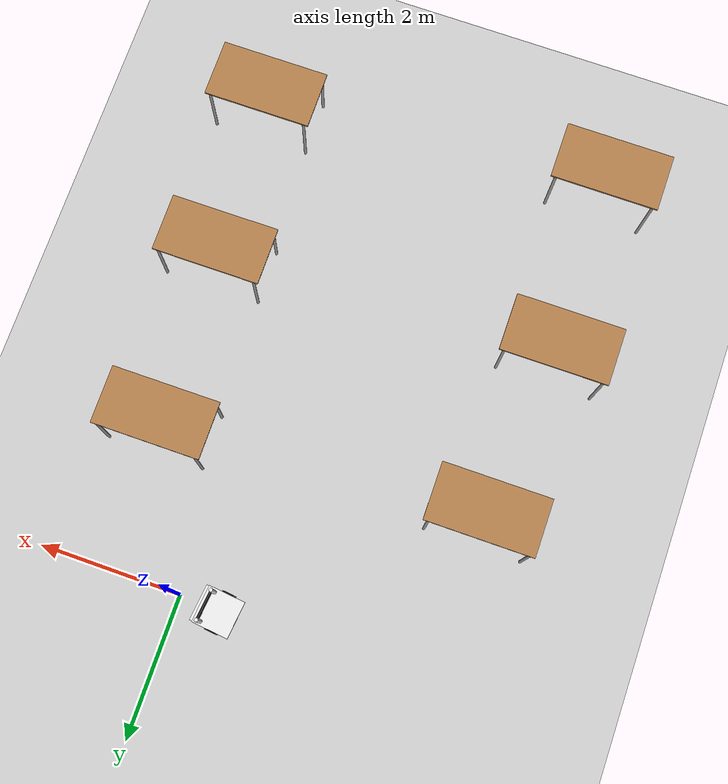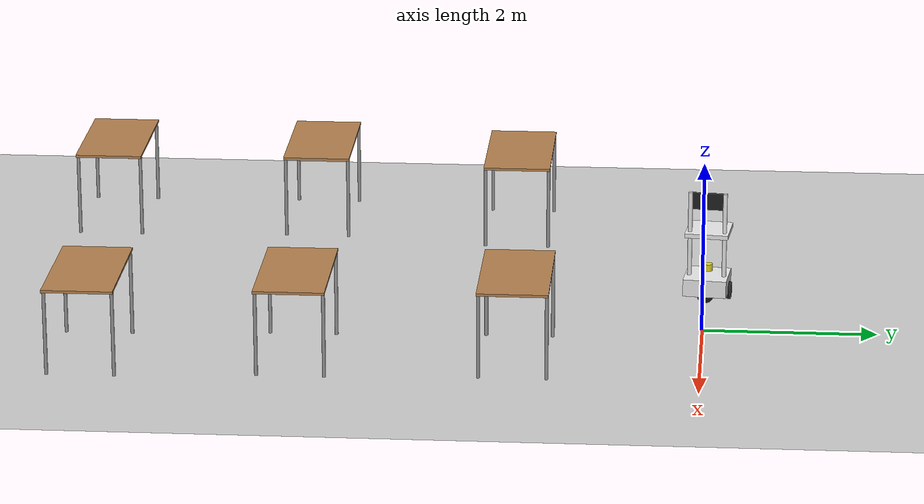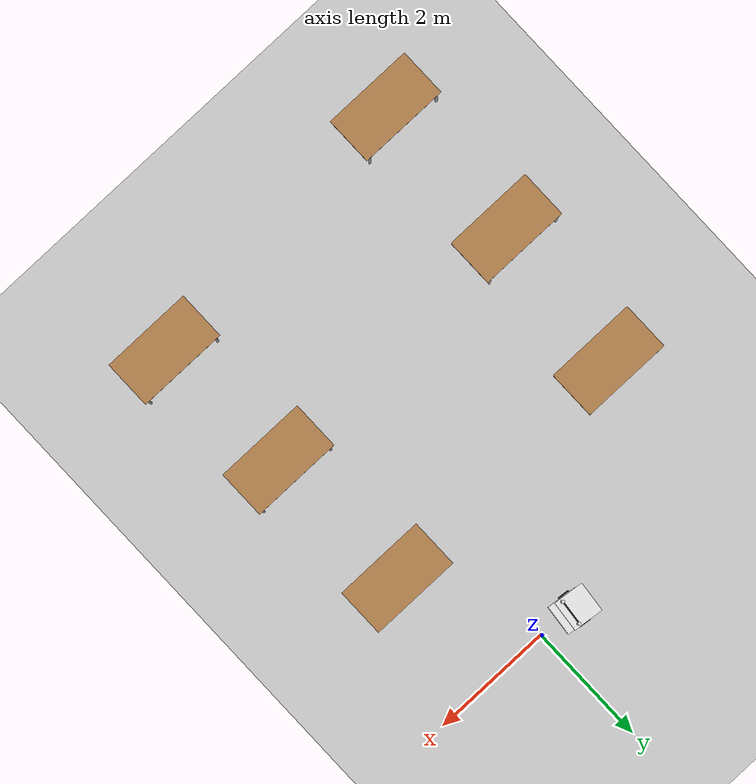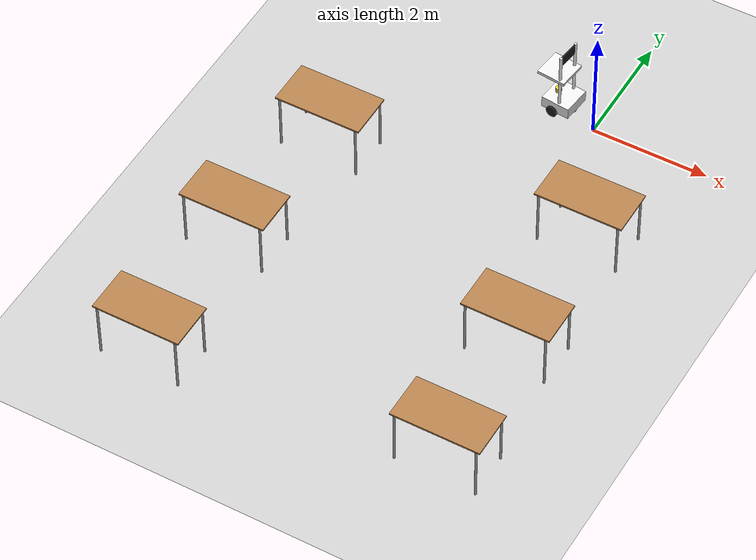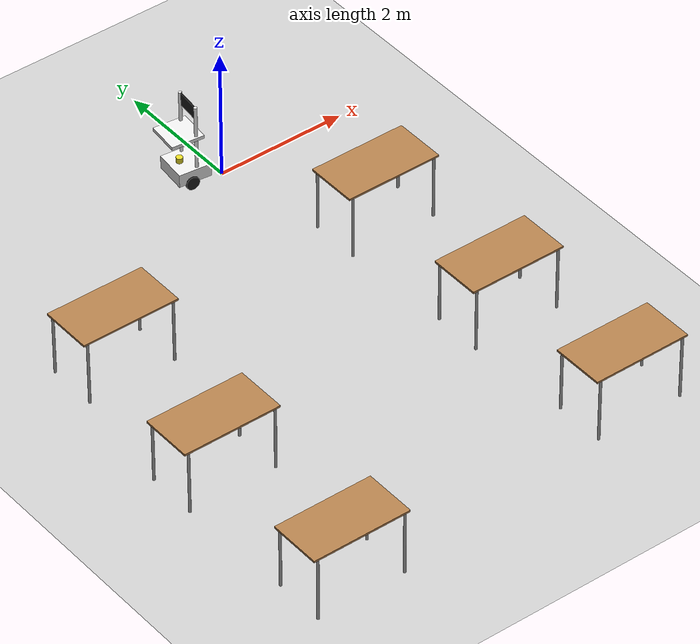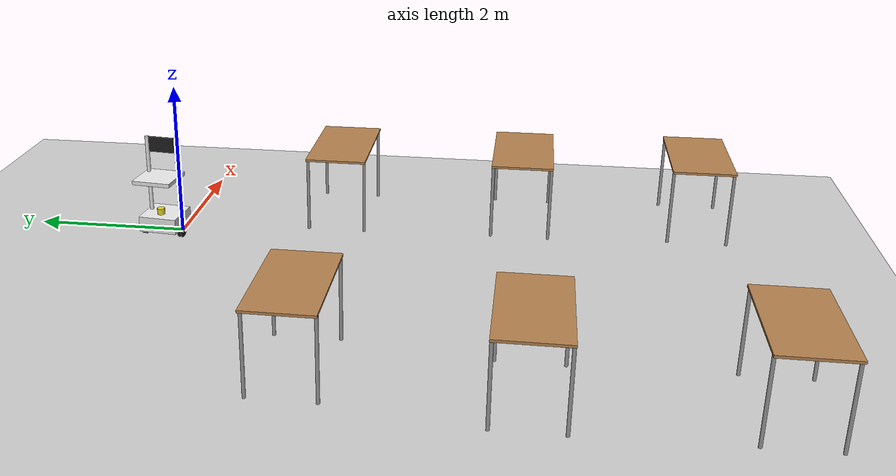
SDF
<sdf version="1.7">
 <world name="default">
  <model name="ground_plane">
   <static>1</static>
   <link name="link">
    <collision name="collision">
     <geometry><plane><normal>0 0 1</normal><size>100 100</size></plane></geometry>
     <surface>
      <contact><collide_bitmask>65535</collide_bitmask></contact>
      <friction><ode><mu>100</mu><mu2>50</mu2></ode></friction>
     </surface>
    </collision>
    <visual name="visual">
     <cast_shadows>0</cast_shadows>
     <geometry><plane><normal>0 0 1</normal><size>100 100</size></plane></geometry>
     <material>
      <script><uri>file://media/materials/scripts/gazebo.material</uri><name>Gazebo/Grey</name></script>
     </material>
    </visual>
   </link>
  </model>
  <model name="my_bot">
   <link name="base_link">
    <inertial>
     <pose>0.0425 0 0.3825 0 -0 0</pose>
     <mass>2</mass>
     <inertia>
      <ixx>0.338966</ixx>
      <ixy>0</ixy>
      <ixz>0.0187625</ixz>
      <iyy>0.33277</iyy>
      <iyz>0</iyz>
      <izz>0.0772042</izz>
     </inertia>
    </inertial>
    <collision name="base_link_fixed_joint_lump__chassis_collision">
     <pose>0.05 0 0.1 0 -0 0</pose>
     <geometry><box><size>0.5 0.5 0.2</size></box></geometry>
    </collision>
    <collision name="base_link_fixed_joint_lump__caster_wheel_collision_1">
     <pose>0.2 0 0 0 -0 0</pose>
     <geometry><sphere><radius>0.1</radius></sphere></geometry>
     <surface><friction><ode><mu>0.001</mu><mu2>0.001</mu2></ode></friction></surface>
    </collision>
    <collision name="base_link_fixed_joint_lump__laser_frame_collision_2">
     <pose>-0.05 0 0.25 0 -0 0</pose>
     <geometry><cylinder><length>0.08</length><radius>0.05</radius></cylinder></geometry>
    </collision>
    <collision name="base_link_fixed_joint_lump__left_pole_collision_3">
     <pose>0.1 0.2 0.7 0 -0 0</pose>
     <geometry><cylinder><length>1</length><radius>0.025</radius></cylinder></geometry>
    </collision>
    <collision name="base_link_fixed_joint_lump__panel_collision_4">
     <pose>0.1 0 1.1 0 -0 0</pose>
     <geometry><box><size>0.35 0.15 0.2</size></box></geometry>
    </collision>
    <collision name="base_link_fixed_joint_lump__right_pole_collision_5">
     <pose>0.1 -0.2 0.7 0 -0 0</pose>
     <geometry><cylinder><length>1</length><radius>0.025</radius></cylinder></geometry>
    </collision>
    <collision name="base_link_fixed_joint_lump__tray_link_collision_6">
     <pose>-0.05 0 0.7 0 -0 0</pose>
     <geometry><box><size>0.5 0.5 0.05</size></box></geometry>
    </collision>
    <visual name="base_link_fixed_joint_lump__chassis_visual">
     <pose>0.05 0 0.1 0 -0 0</pose>
     <geometry><box><size>0.5 0.5 0.2</size></box></geometry>
     <material>
      <script><name>Gazebo/White</name><uri>file://media/materials/scripts/gazebo.material</uri></script>
     </material>
    </visual>
    <visual name="base_link_fixed_joint_lump__caster_wheel_visual_1">
     <pose>0.2 0 0 0 -0 0</pose>
     <geometry><sphere><radius>0.1</radius></sphere></geometry>
     <material>
      <script><name>Gazebo/Black</name><uri>file://media/materials/scripts/gazebo.material</uri></script>
     </material>
    </visual>
    <visual name="base_link_fixed_joint_lump__laser_frame_visual_2">
     <pose>-0.05 0 0.25 0 -0 0</pose>
     <geometry><cylinder><length>0.08</length><radius>0.05</radius></cylinder></geometry>
     <material>
      <script><name>Gazebo/Yellow</name><uri>file://media/materials/scripts/gazebo.material</uri></script>
     </material>
    </visual>
    <visual name="base_link_fixed_joint_lump__laser_frame_visual_3">
     <pose>-0.05 0 0.2 0 -0 0</pose>
     <geometry><cylinder><length>0.1</length><radius>0.01</radius></cylinder></geometry>
     <material>
      <script><name>Gazebo/Yellow</name><uri>file://media/materials/scripts/gazebo.material</uri></script>
     </material>
    </visual>
    <visual name="base_link_fixed_joint_lump__left_pole_visual_4">
     <pose>0.1 0.2 0.7 0 -0 0</pose>
     <geometry><cylinder><length>1</length><radius>0.025</radius></cylinder></geometry>
     <material>
      <script><name>Gazebo/White</name><uri>file://media/materials/scripts/gazebo.material</uri></script>
     </material>
    </visual>
    <visual name="base_link_fixed_joint_lump__panel_visual_5">
     <pose>0.1 0 1.1 0 -0 1.5708</pose>
     <geometry><box><size>0.35 0.015 0.2</size></box></geometry>
     <material>
      <script><name>Gazebo/Black</name><uri>file://media/materials/scripts/gazebo.material</uri></script>
     </material>
    </visual>
    <visual name="base_link_fixed_joint_lump__right_pole_visual_6">
     <pose>0.1 -0.2 0.7 0 -0 0</pose>
     <geometry><cylinder><length>1</length><radius>0.025</radius></cylinder></geometry>
     <material>
      <script><name>Gazebo/White</name><uri>file://media/materials/scripts/gazebo.material</uri></script>
     </material>
    </visual>
    <visual name="base_link_fixed_joint_lump__tray_link_visual_7">
     <pose>-0.05 0 0.7 0 -0 0</pose>
     <geometry><box><size>0.5 0.5 0.05</size></box></geometry>
     <material>
      <script><name>Gazebo/White</name><uri>file://media/materials/scripts/gazebo.material</uri></script>
     </material>
    </visual>
    <sensor name="laser" type="ray">
     <visualize>1</visualize>
     <update_rate>10</update_rate>
     <ray>
      <scan>
       <horizontal>
        <samples>360</samples>
        <min_angle>-3.14</min_angle>
        <max_angle>3.14</max_angle>
        <resolution>1</resolution>
       </horizontal>
       <vertical><samples>1</samples><min_angle>0</min_angle><max_angle>0</max_angle></vertical>
      </scan>
      <range><min>0.3</min><max>12</max></range>
     </ray>
     <plugin name="laser_controller" filename="libgazebo_ros_ray_sensor.so">
      <ros><argument>~/out:=scan</argument></ros>
      <output_type>sensor_msgs/LaserScan</output_type>
      <frame_name>laser_frame</frame_name>
     </plugin>
     <pose>-0.05 0 0.25 0 -0 0</pose>
    </sensor>
   </link>
   <joint name="left_wheel_joint" type="revolute">
    <pose relative_to="base_link">0 0.25 0 -1.5708 0 0</pose>
    <parent>base_link</parent>
    <child>left_wheel</child>
    <axis>
     <xyz>0 0 1</xyz>
     <limit><lower>-1e+16</lower><upper>1e+16</upper></limit>
     <dynamics><spring_reference>0</spring_reference><spring_stiffness>0</spring_stiffness></dynamics>
    </axis>
   </joint>
   <link name="left_wheel">
    <pose relative_to="left_wheel_joint">0 0 0 0 -0 0</pose>
    <inertial>
     <mass>0.1</mass>
     <inertia>
      <ixx>0.000270833</ixx>
      <ixy>0</ixy>
      <ixz>0</ixz>
      <iyy>0.000270833</iyy>
      <iyz>0</iyz>
      <izz>0.0005</izz>
     </inertia>
    </inertial>
    <collision name="left_wheel_collision">
     <geometry><cylinder><length>0.05</length><radius>0.1</radius></cylinder></geometry>
    </collision>
    <visual name="left_wheel_visual">
     <geometry><cylinder><length>0.05</length><radius>0.1</radius></cylinder></geometry>
     <material>
      <script><name>Gazebo/Black</name><uri>file://media/materials/scripts/gazebo.material</uri></script>
     </material>
    </visual>
   </link>
   <joint name="right_wheel_joint" type="revolute">
    <pose relative_to="base_link">0 -0.25 0 1.5708 -0 0</pose>
    <parent>base_link</parent>
    <child>right_wheel</child>
    <axis>
     <xyz>0 0 1</xyz>
     <limit><lower>-1e+16</lower><upper>1e+16</upper></limit>
     <dynamics><spring_reference>0</spring_reference><spring_stiffness>0</spring_stiffness></dynamics>
    </axis>
   </joint>
   <link name="right_wheel">
    <pose relative_to="right_wheel_joint">0 0 0 0 -0 0</pose>
    <inertial>
     <mass>0.1</mass>
     <inertia>
      <ixx>0.000270833</ixx>
      <ixy>0</ixy>
      <ixz>0</ixz>
      <iyy>0.000270833</iyy>
      <iyz>0</iyz>
      <izz>0.0005</izz>
     </inertia>
    </inertial>
    <collision name="right_wheel_collision">
     <geometry><cylinder><length>0.05</length><radius>0.1</radius></cylinder></geometry>
    </collision>
    <visual name="right_wheel_visual">
     <geometry><cylinder><length>0.05</length><radius>0.1</radius></cylinder></geometry>
     <material>
      <script><name>Gazebo/Black</name><uri>file://media/materials/scripts/gazebo.material</uri></script>
     </material>
    </visual>
   </link>
   <static>0</static>
   <plugin name="diff_drive" filename="libgazebo_ros_diff_drive.so">
    <left_joint>left_wheel_joint</left_joint>
    <right_joint>right_wheel_joint</right_joint>
    <wheel_separation>0.297</wheel_separation>
    <wheel_diameter>0.066</wheel_diameter>
    <max_wheel_torque>200</max_wheel_torque>
    <max_wheel_acceleration>10.0</max_wheel_acceleration>
    <odometry_frame>odom</odometry_frame>
    <robot_base_frame>base_link</robot_base_frame>
    <publish_odom>1</publish_odom>
    <publish_odom_tf>1</publish_odom_tf>
    <publish_wheel_tf>1</publish_wheel_tf>
   </plugin>
   <pose>-0.616303 0.047219 0.289797 -0 -1.7e-05 -0.108826</pose>
  </model>
  <model name="table">
   <static>1</static>
   <link name="link">
    <collision name="surface">
     <pose>0 0 1 0 -0 0</pose>
     <geometry><box><size>1.5 0.8 0.03</size></box></geometry>
     <surface><friction><ode><mu>0.6</mu><mu2>0.6</mu2></ode></friction></surface>
    </collision>
    <visual name="visual1">
     <pose>0 0 1 0 -0 0</pose>
     <geometry><box><size>1.5 0.8 0.03</size></box></geometry>
     <material>
      <script><uri>file://media/materials/scripts/gazebo.material</uri><name>Gazebo/Wood</name></script>
     </material>
    </visual>
    <collision name="front_left_leg">
     <pose>0.68 0.38 0.5 0 -0 0</pose>
     <geometry><cylinder><radius>0.02</radius><length>1</length></cylinder></geometry>
    </collision>
    <visual name="front_left_leg">
     <pose>0.68 0.38 0.5 0 -0 0</pose>
     <geometry><cylinder><radius>0.02</radius><length>1</length></cylinder></geometry>
     <material>
      <script><uri>file://media/materials/scripts/gazebo.material</uri><name>Gazebo/Grey</name></script>
     </material>
    </visual>
    <collision name="front_right_leg">
     <pose>0.68 -0.38 0.5 0 -0 0</pose>
     <geometry><cylinder><radius>0.02</radius><length>1</length></cylinder></geometry>
    </collision>
    <visual name="front_right_leg">
     <pose>0.68 -0.38 0.5 0 -0 0</pose>
     <geometry><cylinder><radius>0.02</radius><length>1</length></cylinder></geometry>
     <material>
      <script><uri>file://media/materials/scripts/gazebo.material</uri><name>Gazebo/Grey</name></script>
     </material>
    </visual>
    <collision name="back_right_leg">
     <pose>-0.68 -0.38 0.5 0 -0 0</pose>
     <geometry><cylinder><radius>0.02</radius><length>1</length></cylinder></geometry>
    </collision>
    <visual name="back_right_leg">
     <pose>-0.68 -0.38 0.5 0 -0 0</pose>
     <geometry><cylinder><radius>0.02</radius><length>1</length></cylinder></geometry>
     <material>
      <script><uri>file://media/materials/scripts/gazebo.material</uri><name>Gazebo/Grey</name></script>
     </material>
    </visual>
    <collision name="back_left_leg">
     <pose>-0.68 0.38 0.5 0 -0 0</pose>
     <geometry><cylinder><radius>0.02</radius><length>1</length></cylinder></geometry>
    </collision>
    <visual name="back_left_leg">
     <pose>-0.68 0.38 0.5 0 -0 0</pose>
     <geometry><cylinder><radius>0.02</radius><length>1</length></cylinder></geometry>
     <material>
      <script><uri>file://media/materials/scripts/gazebo.material</uri><name>Gazebo/Grey</name></script>
     </material>
    </visual>
   </link>
   <pose>-3.46801 -2.2933 0 0 -0 0</pose>
  </model>
  <model name="table_0">
   <static>1</static>
   <link name="link">
    <collision name="surface">
     <pose>0 0 1 0 -0 0</pose>
     <geometry><box><size>1.5 0.8 0.03</size></box></geometry>
     <surface><friction><ode><mu>0.6</mu><mu2>0.6</mu2></ode></friction></surface>
    </collision>
    <visual name="visual1">
     <pose>0 0 1 0 -0 0</pose>
     <geometry><box><size>1.5 0.8 0.03</size></box></geometry>
     <material>
      <script><uri>file://media/materials/scripts/gazebo.material</uri><name>Gazebo/Wood</name></script>
     </material>
    </visual>
    <collision name="front_left_leg">
     <pose>0.68 0.38 0.5 0 -0 0</pose>
     <geometry><cylinder><radius>0.02</radius><length>1</length></cylinder></geometry>
    </collision>
    <visual name="front_left_leg">
     <pose>0.68 0.38 0.5 0 -0 0</pose>
     <geometry><cylinder><radius>0.02</radius><length>1</length></cylinder></geometry>
     <material>
      <script><uri>file://media/materials/scripts/gazebo.material</uri><name>Gazebo/Grey</name></script>
     </material>
    </visual>
    <collision name="front_right_leg">
     <pose>0.68 -0.38 0.5 0 -0 0</pose>
     <geometry><cylinder><radius>0.02</radius><length>1</length></cylinder></geometry>
    </collision>
    <visual name="front_right_leg">
     <pose>0.68 -0.38 0.5 0 -0 0</pose>
     <geometry><cylinder><radius>0.02</radius><length>1</length></cylinder></geometry>
     <material>
      <script><uri>file://media/materials/scripts/gazebo.material</uri><name>Gazebo/Grey</name></script>
     </material>
    </visual>
    <collision name="back_right_leg">
     <pose>-0.68 -0.38 0.5 0 -0 0</pose>
     <geometry><cylinder><radius>0.02</radius><length>1</length></cylinder></geometry>
    </collision>
    <visual name="back_right_leg">
     <pose>-0.68 -0.38 0.5 0 -0 0</pose>
     <geometry><cylinder><radius>0.02</radius><length>1</length></cylinder></geometry>
     <material>
      <script><uri>file://media/materials/scripts/gazebo.material</uri><name>Gazebo/Grey</name></script>
     </material>
    </visual>
    <collision name="back_left_leg">
     <pose>-0.68 0.38 0.5 0 -0 0</pose>
     <geometry><cylinder><radius>0.02</radius><length>1</length></cylinder></geometry>
    </collision>
    <visual name="back_left_leg">
     <pose>-0.68 0.38 0.5 0 -0 0</pose>
     <geometry><cylinder><radius>0.02</radius><length>1</length></cylinder></geometry>
     <material>
      <script><uri>file://media/materials/scripts/gazebo.material</uri><name>Gazebo/Grey</name></script>
     </material>
    </visual>
   </link>
   <pose>-3.69998 -4.74946 0 0 -0 0</pose>
  </model>
  <model name="table_1">
   <static>1</static>
   <link name="link">
    <collision name="surface">
     <pose>0 0 1 0 -0 0</pose>
     <geometry><box><size>1.5 0.8 0.03</size></box></geometry>
     <surface><friction><ode><mu>0.6</mu><mu2>0.6</mu2></ode></friction></surface>
    </collision>
    <visual name="visual1">
     <pose>0 0 1 0 -0 0</pose>
     <geometry><box><size>1.5 0.8 0.03</size></box></geometry>
     <material>
      <script><uri>file://media/materials/scripts/gazebo.material</uri><name>Gazebo/Wood</name></script>
     </material>
    </visual>
    <collision name="front_left_leg">
     <pose>0.68 0.38 0.5 0 -0 0</pose>
     <geometry><cylinder><radius>0.02</radius><length>1</length></cylinder></geometry>
    </collision>
    <visual name="front_left_leg">
     <pose>0.68 0.38 0.5 0 -0 0</pose>
     <geometry><cylinder><radius>0.02</radius><length>1</length></cylinder></geometry>
     <material>
      <script><uri>file://media/materials/scripts/gazebo.material</uri><name>Gazebo/Grey</name></script>
     </material>
    </visual>
    <collision name="front_right_leg">
     <pose>0.68 -0.38 0.5 0 -0 0</pose>
     <geometry><cylinder><radius>0.02</radius><length>1</length></cylinder></geometry>
    </collision>
    <visual name="front_right_leg">
     <pose>0.68 -0.38 0.5 0 -0 0</pose>
     <geometry><cylinder><radius>0.02</radius><length>1</length></cylinder></geometry>
     <material>
      <script><uri>file://media/materials/scripts/gazebo.material</uri><name>Gazebo/Grey</name></script>
     </material>
    </visual>
    <collision name="back_right_leg">
     <pose>-0.68 -0.38 0.5 0 -0 0</pose>
     <geometry><cylinder><radius>0.02</radius><length>1</length></cylinder></geometry>
    </collision>
    <visual name="back_right_leg">
     <pose>-0.68 -0.38 0.5 0 -0 0</pose>
     <geometry><cylinder><radius>0.02</radius><length>1</length></cylinder></geometry>
     <material>
      <script><uri>file://media/materials/scripts/gazebo.material</uri><name>Gazebo/Grey</name></script>
     </material>
    </visual>
    <collision name="back_left_leg">
     <pose>-0.68 0.38 0.5 0 -0 0</pose>
     <geometry><cylinder><radius>0.02</radius><length>1</length></cylinder></geometry>
    </collision>
    <visual name="back_left_leg">
     <pose>-0.68 0.38 0.5 0 -0 0</pose>
     <geometry><cylinder><radius>0.02</radius><length>1</length></cylinder></geometry>
     <material>
      <script><uri>file://media/materials/scripts/gazebo.material</uri><name>Gazebo/Grey</name></script>
     </material>
    </visual>
   </link>
   <pose>0.997663 -2.07202 0 0 -0 0</pose>
  </model>
  <model name="table_2">
   <static>1</static>
   <link name="link">
    <collision name="surface">
     <pose>0 0 1 0 -0 0</pose>
     <geometry><box><size>1.5 0.8 0.03</size></box></geometry>
     <surface><friction><ode><mu>0.6</mu><mu2>0.6</mu2></ode></friction></surface>
    </collision>
    <visual name="visual1">
     <pose>0 0 1 0 -0 0</pose>
     <geometry><box><size>1.5 0.8 0.03</size></box></geometry>
     <material>
      <script><uri>file://media/materials/scripts/gazebo.material</uri><name>Gazebo/Wood</name></script>
     </material>
    </visual>
    <collision name="front_left_leg">
     <pose>0.68 0.38 0.5 0 -0 0</pose>
     <geometry><cylinder><radius>0.02</radius><length>1</length></cylinder></geometry>
    </collision>
    <visual name="front_left_leg">
     <pose>0.68 0.38 0.5 0 -0 0</pose>
     <geometry><cylinder><radius>0.02</radius><length>1</length></cylinder></geometry>
     <material>
      <script><uri>file://media/materials/scripts/gazebo.material</uri><name>Gazebo/Grey</name></script>
     </material>
    </visual>
    <collision name="front_right_leg">
     <pose>0.68 -0.38 0.5 0 -0 0</pose>
     <geometry><cylinder><radius>0.02</radius><length>1</length></cylinder></geometry>
    </collision>
    <visual name="front_right_leg">
     <pose>0.68 -0.38 0.5 0 -0 0</pose>
     <geometry><cylinder><radius>0.02</radius><length>1</length></cylinder></geometry>
     <material>
      <script><uri>file://media/materials/scripts/gazebo.material</uri><name>Gazebo/Grey</name></script>
     </material>
    </visual>
    <collision name="back_right_leg">
     <pose>-0.68 -0.38 0.5 0 -0 0</pose>
     <geometry><cylinder><radius>0.02</radius><length>1</length></cylinder></geometry>
    </collision>
    <visual name="back_right_leg">
     <pose>-0.68 -0.38 0.5 0 -0 0</pose>
     <geometry><cylinder><radius>0.02</radius><length>1</length></cylinder></geometry>
     <material>
      <script><uri>file://media/materials/scripts/gazebo.material</uri><name>Gazebo/Grey</name></script>
     </material>
    </visual>
    <collision name="back_left_leg">
     <pose>-0.68 0.38 0.5 0 -0 0</pose>
     <geometry><cylinder><radius>0.02</radius><length>1</length></cylinder></geometry>
    </collision>
    <visual name="back_left_leg">
     <pose>-0.68 0.38 0.5 0 -0 0</pose>
     <geometry><cylinder><radius>0.02</radius><length>1</length></cylinder></geometry>
     <material>
      <script><uri>file://media/materials/scripts/gazebo.material</uri><name>Gazebo/Grey</name></script>
     </material>
    </visual>
   </link>
   <pose>1.09302 -4.53964 0 0 -0 0</pose>
  </model>
  <model name="table_3">
   <static>1</static>
   <link name="link">
    <collision name="surface">
     <pose>0 0 1 0 -0 0</pose>
     <geometry><box><size>1.5 0.8 0.03</size></box></geometry>
     <surface><friction><ode><mu>0.6</mu><mu2>0.6</mu2></ode></friction></surface>
    </collision>
    <visual name="visual1">
     <pose>0 0 1 0 -0 0</pose>
     <geometry><box><size>1.5 0.8 0.03</size></box></geometry>
     <material>
      <script><uri>file://media/materials/scripts/gazebo.material</uri><name>Gazebo/Wood</name></script>
     </material>
    </visual>
    <collision name="front_left_leg">
     <pose>0.68 0.38 0.5 0 -0 0</pose>
     <geometry><cylinder><radius>0.02</radius><length>1</length></cylinder></geometry>
    </collision>
    <visual name="front_left_leg">
     <pose>0.68 0.38 0.5 0 -0 0</pose>
     <geometry><cylinder><radius>0.02</radius><length>1</length></cylinder></geometry>
     <material>
      <script><uri>file://media/materials/scripts/gazebo.material</uri><name>Gazebo/Grey</name></script>
     </material>
    </visual>
    <collision name="front_right_leg">
     <pose>0.68 -0.38 0.5 0 -0 0</pose>
     <geometry><cylinder><radius>0.02</radius><length>1</length></cylinder></geometry>
    </collision>
    <visual name="front_right_leg">
     <pose>0.68 -0.38 0.5 0 -0 0</pose>
     <geometry><cylinder><radius>0.02</radius><length>1</length></cylinder></geometry>
     <material>
      <script><uri>file://media/materials/scripts/gazebo.material</uri><name>Gazebo/Grey</name></script>
     </material>
    </visual>
    <collision name="back_right_leg">
     <pose>-0.68 -0.38 0.5 0 -0 0</pose>
     <geometry><cylinder><radius>0.02</radius><length>1</length></cylinder></geometry>
    </collision>
    <visual name="back_right_leg">
     <pose>-0.68 -0.38 0.5 0 -0 0</pose>
     <geometry><cylinder><radius>0.02</radius><length>1</length></cylinder></geometry>
     <material>
      <script><uri>file://media/materials/scripts/gazebo.material</uri><name>Gazebo/Grey</name></script>
     </material>
    </visual>
    <collision name="back_left_leg">
     <pose>-0.68 0.38 0.5 0 -0 0</pose>
     <geometry><cylinder><radius>0.02</radius><length>1</length></cylinder></geometry>
    </collision>
    <visual name="back_left_leg">
     <pose>-0.68 0.38 0.5 0 -0 0</pose>
     <geometry><cylinder><radius>0.02</radius><length>1</length></cylinder></geometry>
     <material>
      <script><uri>file://media/materials/scripts/gazebo.material</uri><name>Gazebo/Grey</name></script>
     </material>
    </visual>
   </link>
   <pose>-3.62385 -7.28271 0 0 -0 0</pose>
  </model>
  <model name="table_4">
   <static>1</static>
   <link name="link">
    <collision name="surface">
     <pose>0 0 1 0 -0 0</pose>
     <geometry><box><size>1.5 0.8 0.03</size></box></geometry>
     <surface><friction><ode><mu>0.6</mu><mu2>0.6</mu2></ode></friction></surface>
    </collision>
    <visual name="visual1">
     <pose>0 0 1 0 -0 0</pose>
     <geometry><box><size>1.5 0.8 0.03</size></box></geometry>
     <material>
      <script><uri>file://media/materials/scripts/gazebo.material</uri><name>Gazebo/Wood</name></script>
     </material>
    </visual>
    <collision name="front_left_leg">
     <pose>0.68 0.38 0.5 0 -0 0</pose>
     <geometry><cylinder><radius>0.02</radius><length>1</length></cylinder></geometry>
    </collision>
    <visual name="front_left_leg">
     <pose>0.68 0.38 0.5 0 -0 0</pose>
     <geometry><cylinder><radius>0.02</radius><length>1</length></cylinder></geometry>
     <material>
      <script><uri>file://media/materials/scripts/gazebo.material</uri><name>Gazebo/Grey</name></script>
     </material>
    </visual>
    <collision name="front_right_leg">
     <pose>0.68 -0.38 0.5 0 -0 0</pose>
     <geometry><cylinder><radius>0.02</radius><length>1</length></cylinder></geometry>
    </collision>
    <visual name="front_right_leg">
     <pose>0.68 -0.38 0.5 0 -0 0</pose>
     <geometry><cylinder><radius>0.02</radius><length>1</length></cylinder></geometry>
     <material>
      <script><uri>file://media/materials/scripts/gazebo.material</uri><name>Gazebo/Grey</name></script>
     </material>
    </visual>
    <collision name="back_right_leg">
     <pose>-0.68 -0.38 0.5 0 -0 0</pose>
     <geometry><cylinder><radius>0.02</radius><length>1</length></cylinder></geometry>
    </collision>
    <visual name="back_right_leg">
     <pose>-0.68 -0.38 0.5 0 -0 0</pose>
     <geometry><cylinder><radius>0.02</radius><length>1</length></cylinder></geometry>
     <material>
      <script><uri>file://media/materials/scripts/gazebo.material</uri><name>Gazebo/Grey</name></script>
     </material>
    </visual>
    <collision name="back_left_leg">
     <pose>-0.68 0.38 0.5 0 -0 0</pose>
     <geometry><cylinder><radius>0.02</radius><length>1</length></cylinder></geometry>
    </collision>
    <visual name="back_left_leg">
     <pose>-0.68 0.38 0.5 0 -0 0</pose>
     <geometry><cylinder><radius>0.02</radius><length>1</length></cylinder></geometry>
     <material>
      <script><uri>file://media/materials/scripts/gazebo.material</uri><name>Gazebo/Grey</name></script>
     </material>
    </visual>
   </link>
   <pose>1.2191 -6.87271 0 0 -0 0</pose>
  </model>
 </world>
</sdf>
